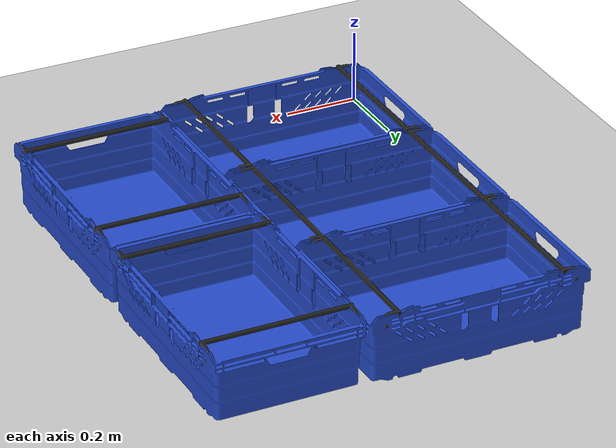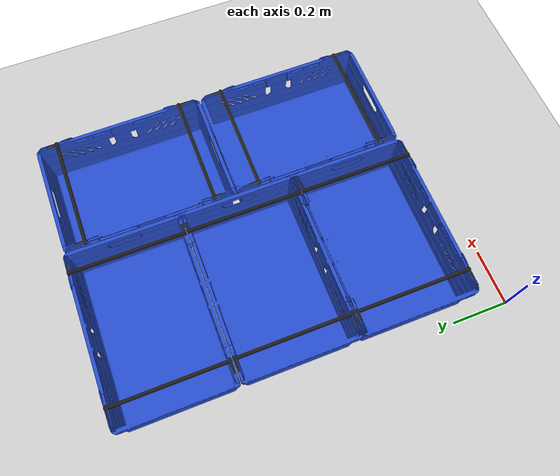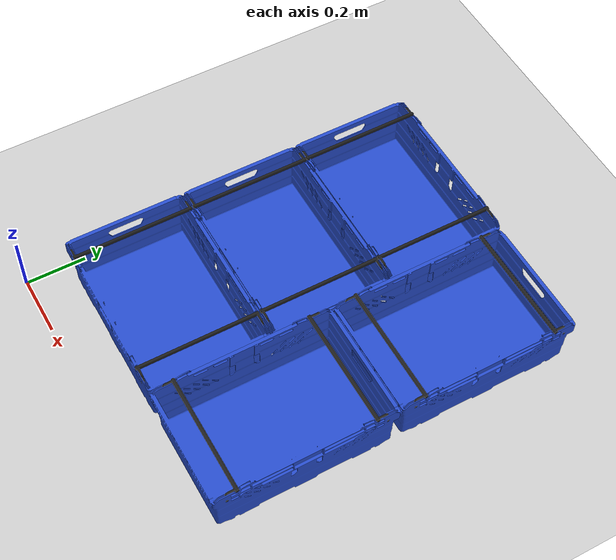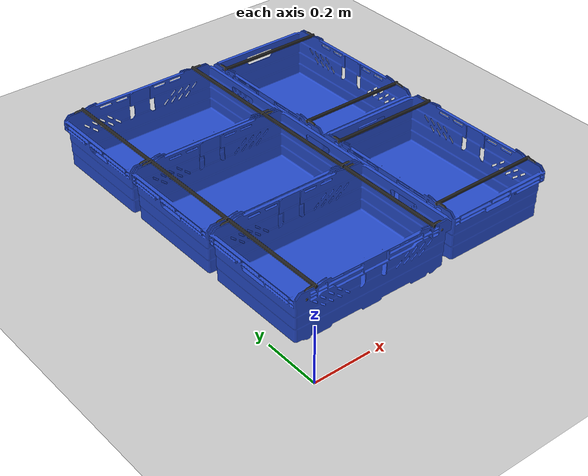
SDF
<sdf version="1.7">
 <world name="default">
  <light name="sun" type="directional">
   <pose>0 0 10 0 -0 0</pose>
   <diffuse>0.8 0.8 0.8 1</diffuse>
   <specular>0.2 0.2 0.2 1</specular>
   <attenuation>
    <range>1000</range>
    <constant>0.9</constant>
    <linear>0.01</linear>
    <quadratic>0.001</quadratic>
   </attenuation>
   <direction>-0.5 0.1 -0.9</direction>
   <spot><inner_angle>0</inner_angle><outer_angle>0</outer_angle><falloff>0</falloff></spot>
  </light>
  <model name="ground_plane">
   <static>1</static>
   <link name="link">
    <collision name="collision">
     <geometry><plane><normal>0 0 1</normal><size>100 100</size></plane></geometry>
     <surface>
      <contact><collide_bitmask>65535</collide_bitmask></contact>
      <friction><ode><mu>100</mu><mu2>50</mu2></ode></friction>
     </surface>
    </collision>
    <visual name="visual">
     <cast_shadows>0</cast_shadows>
     <geometry><plane><normal>0 0 1</normal><size>100 100</size></plane></geometry>
     <material>
      <script><uri>file://media/materials/scripts/gazebo.material</uri><name>Gazebo/Grey</name></script>
     </material>
    </visual>
   </link>
  </model>
  <gravity>0 0 -9.8</gravity>
  <magnetic_field>6e-06 2.3e-05 -4.2e-05</magnetic_field>
  <atmosphere type="adiabatic"/>
  <physics type="ode">
   <max_step_size>0.001</max_step_size>
   <real_time_factor>1</real_time_factor>
   <real_time_update_rate>1000</real_time_update_rate>
  </physics>
  <scene><ambient>0.4 0.4 0.4 1</ambient><background>0.7 0.7 0.7 1</background><shadows>1</shadows></scene>
  <audio><device>default</device></audio>
  <spherical_coordinates>
   <surface_model>EARTH_WGS84</surface_model>
   <latitude_deg>0</latitude_deg>
   <longitude_deg>0</longitude_deg>
   <elevation>0</elevation>
   <heading_deg>0</heading_deg>
  </spherical_coordinates>
  <model name="blue_tray">
   <static>0</static>
   <link name="base_link">
    <collision name="tray">
     <geometry><mesh><uri>model://blue_tray/meshes/base_link.dae</uri></mesh></geometry>
    </collision>
    <visual name="tray">
     <geometry><mesh><uri>model://blue_tray/meshes/base_link.dae</uri></mesh></geometry>
     <material>
      <script><name>Gazebo/Blue</name><uri>file://media/materials/scripts/gazebo.material</uri></script>
     </material>
    </visual>
    <inertial>
     <inertia><ixx>1</ixx><ixy>0</ixy><ixz>0</ixz><iyy>1</iyy><iyz>0</iyz><izz>1</izz></inertia>
     <mass>1</mass>
    </inertial>
   </link>
   <link name="link1">
    <collision name="handle1">
     <pose>0.223 -0.2 0 1.5707 0 1.5707</pose>
     <geometry><mesh><uri>model://blue_tray/meshes/link1.dae</uri></mesh></geometry>
    </collision>
    <visual name="handle1">
     <pose>0.223 -0.2 0 1.5707 0 1.5707</pose>
     <geometry><mesh><uri>model://blue_tray/meshes/link1.dae</uri></mesh></geometry>
     <material>
      <script><name>Gazebo/Black</name><uri>file://media/materials/scripts/gazebo.material</uri></script>
     </material>
    </visual>
    <inertial>
     <inertia><ixx>1</ixx><ixy>0</ixy><ixz>0</ixz><iyy>1</iyy><iyz>0</iyz><izz>1</izz></inertia>
     <mass>1</mass>
    </inertial>
   </link>
   <joint name="joint1" type="fixed">
    <parent>base_link</parent>
    <child>link1</child>
    <pose>0.223 -0.2 0 1.5707 0 1.5707</pose>
    <axis><xyz>0 0 1</xyz><limit><lower>-1e+16</lower><upper>1e+16</upper></limit></axis>
   </joint>
   <link name="link2">
    <collision name="handle2">
     <pose>-0.223 0.2 0 -1.5707 0 -1.5707</pose>
     <geometry><mesh><uri>model://blue_tray/meshes/link2.dae</uri></mesh></geometry>
    </collision>
    <visual name="handle2">
     <pose>-0.223 0.2 0 -1.5707 0 -1.5707</pose>
     <geometry><mesh><uri>model://blue_tray/meshes/link2.dae</uri></mesh></geometry>
     <material>
      <script><name>Gazebo/Black</name><uri>file://media/materials/scripts/gazebo.material</uri></script>
     </material>
    </visual>
    <inertial>
     <inertia><ixx>1</ixx><ixy>0</ixy><ixz>0</ixz><iyy>1</iyy><iyz>0</iyz><izz>1</izz></inertia>
     <mass>1</mass>
    </inertial>
   </link>
   <joint name="joint2" type="fixed">
    <parent>base_link</parent>
    <child>link2</child>
    <pose>-0.223 0.2 0 -1.5707 0 -1.5707</pose>
    <axis><xyz>0 0 1</xyz><limit><lower>-1e+16</lower><upper>1e+16</upper></limit></axis>
   </joint>
   <pose>0.341053 0.336527 0.188 0 0 -0.00014</pose>
  </model>
  <model name="blue_tray_clone">
   <static>0</static>
   <link name="base_link">
    <collision name="tray">
     <geometry><mesh><uri>model://blue_tray/meshes/base_link.dae</uri></mesh></geometry>
    </collision>
    <visual name="tray">
     <geometry><mesh><uri>model://blue_tray/meshes/base_link.dae</uri></mesh></geometry>
     <material>
      <script><name>Gazebo/Blue</name><uri>file://media/materials/scripts/gazebo.material</uri></script>
     </material>
    </visual>
    <inertial>
     <inertia><ixx>1</ixx><ixy>0</ixy><ixz>0</ixz><iyy>1</iyy><iyz>0</iyz><izz>1</izz></inertia>
     <mass>1</mass>
    </inertial>
   </link>
   <link name="link1">
    <collision name="handle1">
     <pose>0.223 -0.2 0 1.5707 0 1.5707</pose>
     <geometry><mesh><uri>model://blue_tray/meshes/link1.dae</uri></mesh></geometry>
    </collision>
    <visual name="handle1">
     <pose>0.223 -0.2 0 1.5707 0 1.5707</pose>
     <geometry><mesh><uri>model://blue_tray/meshes/link1.dae</uri></mesh></geometry>
     <material>
      <script><name>Gazebo/Black</name><uri>file://media/materials/scripts/gazebo.material</uri></script>
     </material>
    </visual>
    <inertial>
     <inertia><ixx>1</ixx><ixy>0</ixy><ixz>0</ixz><iyy>1</iyy><iyz>0</iyz><izz>1</izz></inertia>
     <mass>1</mass>
    </inertial>
   </link>
   <joint name="joint1" type="fixed">
    <parent>base_link</parent>
    <child>link1</child>
    <pose>0.223 -0.2 0 1.5707 0 1.5707</pose>
    <axis><xyz>0 0 1</xyz><limit><lower>-1e+16</lower><upper>1e+16</upper></limit></axis>
   </joint>
   <link name="link2">
    <collision name="handle2">
     <pose>-0.223 0.2 0 -1.5707 0 -1.5707</pose>
     <geometry><mesh><uri>model://blue_tray/meshes/link2.dae</uri></mesh></geometry>
    </collision>
    <visual name="handle2">
     <pose>-0.223 0.2 0 -1.5707 0 -1.5707</pose>
     <geometry><mesh><uri>model://blue_tray/meshes/link2.dae</uri></mesh></geometry>
     <material>
      <script><name>Gazebo/Black</name><uri>file://media/materials/scripts/gazebo.material</uri></script>
     </material>
    </visual>
    <inertial>
     <inertia><ixx>1</ixx><ixy>0</ixy><ixz>0</ixz><iyy>1</iyy><iyz>0</iyz><izz>1</izz></inertia>
     <mass>1</mass>
    </inertial>
   </link>
   <joint name="joint2" type="fixed">
    <parent>base_link</parent>
    <child>link2</child>
    <pose>-0.223 0.2 0 -1.5707 0 -1.5707</pose>
    <axis><xyz>0 0 1</xyz><limit><lower>-1e+16</lower><upper>1e+16</upper></limit></axis>
   </joint>
   <pose>0.340532 0.74305 0.188003 1.4e-05 -0 0.000124</pose>
  </model>
  <model name="blue_tray_clone_0">
   <static>0</static>
   <link name="base_link">
    <collision name="tray">
     <geometry><mesh><uri>model://blue_tray/meshes/base_link.dae</uri></mesh></geometry>
    </collision>
    <visual name="tray">
     <geometry><mesh><uri>model://blue_tray/meshes/base_link.dae</uri></mesh></geometry>
     <material>
      <script><name>Gazebo/Blue</name><uri>file://media/materials/scripts/gazebo.material</uri></script>
     </material>
    </visual>
    <inertial>
     <inertia><ixx>1</ixx><ixy>0</ixy><ixz>0</ixz><iyy>1</iyy><iyz>0</iyz><izz>1</izz></inertia>
     <mass>1</mass>
    </inertial>
   </link>
   <link name="link1">
    <collision name="handle1">
     <pose>0.223 -0.2 0 1.5707 0 1.5707</pose>
     <geometry><mesh><uri>model://blue_tray/meshes/link1.dae</uri></mesh></geometry>
    </collision>
    <visual name="handle1">
     <pose>0.223 -0.2 0 1.5707 0 1.5707</pose>
     <geometry><mesh><uri>model://blue_tray/meshes/link1.dae</uri></mesh></geometry>
     <material>
      <script><name>Gazebo/Black</name><uri>file://media/materials/scripts/gazebo.material</uri></script>
     </material>
    </visual>
    <inertial>
     <inertia><ixx>1</ixx><ixy>0</ixy><ixz>0</ixz><iyy>1</iyy><iyz>0</iyz><izz>1</izz></inertia>
     <mass>1</mass>
    </inertial>
   </link>
   <joint name="joint1" type="fixed">
    <parent>base_link</parent>
    <child>link1</child>
    <pose>0.223 -0.2 0 1.5707 0 1.5707</pose>
    <axis><xyz>0 0 1</xyz><limit><lower>-1e+16</lower><upper>1e+16</upper></limit></axis>
   </joint>
   <link name="link2">
    <collision name="handle2">
     <pose>-0.223 0.2 0 -1.5707 0 -1.5707</pose>
     <geometry><mesh><uri>model://blue_tray/meshes/link2.dae</uri></mesh></geometry>
    </collision>
    <visual name="handle2">
     <pose>-0.223 0.2 0 -1.5707 0 -1.5707</pose>
     <geometry><mesh><uri>model://blue_tray/meshes/link2.dae</uri></mesh></geometry>
     <material>
      <script><name>Gazebo/Black</name><uri>file://media/materials/scripts/gazebo.material</uri></script>
     </material>
    </visual>
    <inertial>
     <inertia><ixx>1</ixx><ixy>0</ixy><ixz>0</ixz><iyy>1</iyy><iyz>0</iyz><izz>1</izz></inertia>
     <mass>1</mass>
    </inertial>
   </link>
   <joint name="joint2" type="fixed">
    <parent>base_link</parent>
    <child>link2</child>
    <pose>-0.223 0.2 0 -1.5707 0 -1.5707</pose>
    <axis><xyz>0 0 1</xyz><limit><lower>-1e+16</lower><upper>1e+16</upper></limit></axis>
   </joint>
   <pose>0.339124 1.14576 0.188002 -5e-06 4e-06 5.8e-05</pose>
  </model>
  <model name="blue_tray_clone_1">
   <static>0</static>
   <link name="base_link">
    <collision name="tray">
     <geometry><mesh><uri>model://blue_tray/meshes/base_link.dae</uri></mesh></geometry>
    </collision>
    <visual name="tray">
     <geometry><mesh><uri>model://blue_tray/meshes/base_link.dae</uri></mesh></geometry>
     <material>
      <script><name>Gazebo/Blue</name><uri>file://media/materials/scripts/gazebo.material</uri></script>
     </material>
    </visual>
    <inertial>
     <inertia><ixx>1</ixx><ixy>0</ixy><ixz>0</ixz><iyy>1</iyy><iyz>0</iyz><izz>1</izz></inertia>
     <mass>1</mass>
    </inertial>
   </link>
   <link name="link1">
    <collision name="handle1">
     <pose>0.223 -0.2 0 1.5707 0 1.5707</pose>
     <geometry><mesh><uri>model://blue_tray/meshes/link1.dae</uri></mesh></geometry>
    </collision>
    <visual name="handle1">
     <pose>0.223 -0.2 0 1.5707 0 1.5707</pose>
     <geometry><mesh><uri>model://blue_tray/meshes/link1.dae</uri></mesh></geometry>
     <material>
      <script><name>Gazebo/Black</name><uri>file://media/materials/scripts/gazebo.material</uri></script>
     </material>
    </visual>
    <inertial>
     <inertia><ixx>1</ixx><ixy>0</ixy><ixz>0</ixz><iyy>1</iyy><iyz>0</iyz><izz>1</izz></inertia>
     <mass>1</mass>
    </inertial>
   </link>
   <joint name="joint1" type="fixed">
    <parent>base_link</parent>
    <child>link1</child>
    <pose>0.223 -0.2 0 1.5707 0 1.5707</pose>
    <axis><xyz>0 0 1</xyz><limit><lower>-1e+16</lower><upper>1e+16</upper></limit></axis>
   </joint>
   <link name="link2">
    <collision name="handle2">
     <pose>-0.223 0.2 0 -1.5707 0 -1.5707</pose>
     <geometry><mesh><uri>model://blue_tray/meshes/link2.dae</uri></mesh></geometry>
    </collision>
    <visual name="handle2">
     <pose>-0.223 0.2 0 -1.5707 0 -1.5707</pose>
     <geometry><mesh><uri>model://blue_tray/meshes/link2.dae</uri></mesh></geometry>
     <material>
      <script><name>Gazebo/Black</name><uri>file://media/materials/scripts/gazebo.material</uri></script>
     </material>
    </visual>
    <inertial>
     <inertia><ixx>1</ixx><ixy>0</ixy><ixz>0</ixz><iyy>1</iyy><iyz>0</iyz><izz>1</izz></inertia>
     <mass>1</mass>
    </inertial>
   </link>
   <joint name="joint2" type="fixed">
    <parent>base_link</parent>
    <child>link2</child>
    <pose>-0.223 0.2 0 -1.5707 0 -1.5707</pose>
    <axis><xyz>0 0 1</xyz><limit><lower>-1e+16</lower><upper>1e+16</upper></limit></axis>
   </joint>
   <pose>0.846216 0.437958 0.187991 -2e-06 -1e-06 1.57369</pose>
  </model>
  <model name="blue_tray_clone_1_clone">
   <static>0</static>
   <link name="base_link">
    <collision name="tray">
     <geometry><mesh><uri>model://blue_tray/meshes/base_link.dae</uri></mesh></geometry>
    </collision>
    <visual name="tray">
     <geometry><mesh><uri>model://blue_tray/meshes/base_link.dae</uri></mesh></geometry>
     <material>
      <script><name>Gazebo/Blue</name><uri>file://media/materials/scripts/gazebo.material</uri></script>
     </material>
    </visual>
    <inertial>
     <inertia><ixx>1</ixx><ixy>0</ixy><ixz>0</ixz><iyy>1</iyy><iyz>0</iyz><izz>1</izz></inertia>
     <mass>1</mass>
    </inertial>
   </link>
   <link name="link1">
    <collision name="handle1">
     <pose>0.223 -0.2 0 1.5707 0 1.5707</pose>
     <geometry><mesh><uri>model://blue_tray/meshes/link1.dae</uri></mesh></geometry>
    </collision>
    <visual name="handle1">
     <pose>0.223 -0.2 0 1.5707 0 1.5707</pose>
     <geometry><mesh><uri>model://blue_tray/meshes/link1.dae</uri></mesh></geometry>
     <material>
      <script><name>Gazebo/Black</name><uri>file://media/materials/scripts/gazebo.material</uri></script>
     </material>
    </visual>
    <inertial>
     <inertia><ixx>1</ixx><ixy>0</ixy><ixz>0</ixz><iyy>1</iyy><iyz>0</iyz><izz>1</izz></inertia>
     <mass>1</mass>
    </inertial>
   </link>
   <joint name="joint1" type="fixed">
    <parent>base_link</parent>
    <child>link1</child>
    <pose>0.223 -0.2 0 1.5707 0 1.5707</pose>
    <axis><xyz>0 0 1</xyz><limit><lower>-1e+16</lower><upper>1e+16</upper></limit></axis>
   </joint>
   <link name="link2">
    <collision name="handle2">
     <pose>-0.223 0.2 0 -1.5707 0 -1.5707</pose>
     <geometry><mesh><uri>model://blue_tray/meshes/link2.dae</uri></mesh></geometry>
    </collision>
    <visual name="handle2">
     <pose>-0.223 0.2 0 -1.5707 0 -1.5707</pose>
     <geometry><mesh><uri>model://blue_tray/meshes/link2.dae</uri></mesh></geometry>
     <material>
      <script><name>Gazebo/Black</name><uri>file://media/materials/scripts/gazebo.material</uri></script>
     </material>
    </visual>
    <inertial>
     <inertia><ixx>1</ixx><ixy>0</ixy><ixz>0</ixz><iyy>1</iyy><iyz>0</iyz><izz>1</izz></inertia>
     <mass>1</mass>
    </inertial>
   </link>
   <joint name="joint2" type="fixed">
    <parent>base_link</parent>
    <child>link2</child>
    <pose>-0.223 0.2 0 -1.5707 0 -1.5707</pose>
    <axis><xyz>0 0 1</xyz><limit><lower>-1e+16</lower><upper>1e+16</upper></limit></axis>
   </joint>
   <pose>0.844192 1.04258 0.188003 -1.8e-05 -0 1.57365</pose>
  </model>
 </world>
</sdf>
